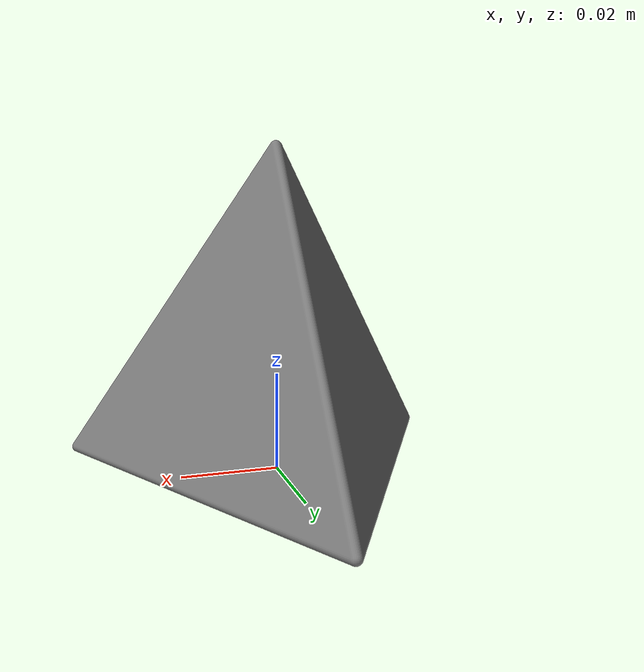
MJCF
<mujoco model="tetrahedron">
    <compiler angle="radian"/>
    <default>
        <geom type="mesh" condim="3" margin="0.005" contype="1" conaffinity="1"/>
    </default>
    <asset>
        <mesh name="tetrahedron" file="tetrahedron.stl" scale="0.0017 0.0017 0.0017"/>
    </asset>
    <worldbody>
        <body name="tetrahedron">
            <geom mesh="tetrahedron" density="400"/>
        </body>
    </worldbody>
</mujoco>
